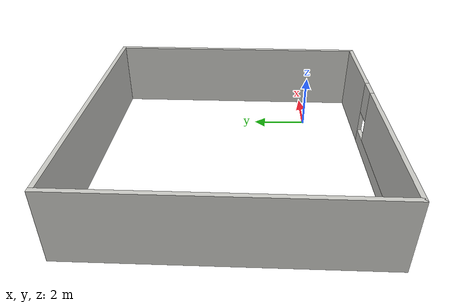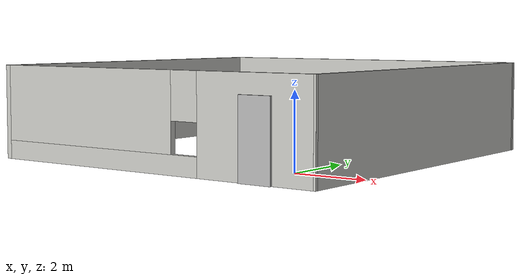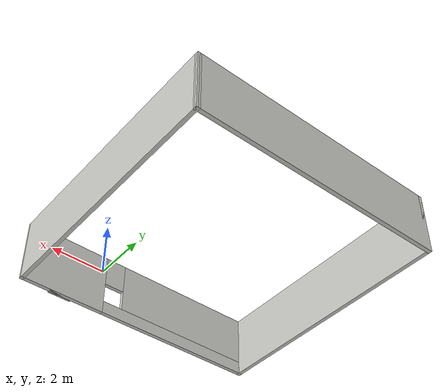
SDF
<?xml version='1.0'?>
<sdf version='1.7'>
  <model name='ground'>
    <pose>-2.92873 2.88 0 0 -0 0</pose>
    <link name='Door_0'>
      <collision name='Door_0_Collision'>
        <geometry>
          <box>
            <size>0.9 0.17 2</size>
          </box>
        </geometry>
        <pose>0 0 1 0 -0 0</pose>
      </collision>
      <visual name='Door_0_Visual'>
        <pose>0 0 1 0 -0 0</pose>
        <geometry>
          <box>
            <size>0.9 0.17 2</size>
          </box>
        </geometry>
      </visual>
      <pose>3.36872 -4.98 0 0 -0 0</pose>
    </link>
    <link name='Wall_3'>
      <pose>-5e-05 -4.925 0 0 -0 3.14159</pose>
      <visual name='Wall_3_Visual_0'>
        <pose>-3.32185 0 1.25 0 -0 0</pose>
        <geometry>
          <box>
            <size>3.32985 0.15 2.5</size>
          </box>
        </geometry>
        <material>
          <script>
            <uri>file://media/materials/scripts/gazebo.material</uri>
            <name>Gazebo/CeilingTiled</name>
          </script>
          <ambient>1 1 1 1</ambient>
        </material>
        <meta>
          <layer>0</layer>
        </meta>
      </visual>
      <collision name='Wall_3_Collision_0'>
        <geometry>
          <box>
            <size>3.32985 0.15 2.5</size>
          </box>
        </geometry>
        <pose>-3.32185 0 1.25 0 -0 0</pose>
      </collision>
      <visual name='Wall_3_Visual_1'>
        <pose>1.66492 0 0.25 0 -0 0</pose>
        <geometry>
          <box>
            <size>6.6437 0.15 0.5</size>
          </box>
        </geometry>
        <material>
          <script>
            <uri>file://media/materials/scripts/gazebo.material</uri>
            <name>Gazebo/CeilingTiled</name>
          </script>
          <ambient>1 1 1 1</ambient>
        </material>
        <meta>
          <layer>0</layer>
        </meta>
      </visual>
      <collision name='Wall_3_Collision_1'>
        <geometry>
          <box>
            <size>6.6437 0.15 0.5</size>
          </box>
        </geometry>
        <pose>1.66492 0 0.25 0 -0 0</pose>
      </collision>
      <visual name='Wall_3_Visual_2'>
        <pose>2.06492 0 1.5 0 -0 0</pose>
        <geometry>
          <box>
            <size>5.8437 0.15 2</size>
          </box>
        </geometry>
        <material>
          <script>
            <uri>file://media/materials/scripts/gazebo.material</uri>
            <name>Gazebo/CeilingTiled</name>
          </script>
          <ambient>1 1 1 1</ambient>
        </material>
        <meta>
          <layer>0</layer>
        </meta>
      </visual>
      <collision name='Wall_3_Collision_2'>
        <geometry>
          <box>
            <size>5.8437 0.15 2</size>
          </box>
        </geometry>
        <pose>2.06492 0 1.5 0 -0 0</pose>
      </collision>
      <visual name='Wall_3_Visual_3'>
        <pose>-1.25693 0 1.9 0 -0 0</pose>
        <geometry>
          <box>
            <size>0.8 0.15 1.2</size>
          </box>
        </geometry>
        <material>
          <script>
            <uri>file://media/materials/scripts/gazebo.material</uri>
            <name>Gazebo/CeilingTiled</name>
          </script>
          <ambient>1 1 1 1</ambient>
        </material>
        <meta>
          <layer>0</layer>
        </meta>
      </visual>
      <collision name='Wall_3_Collision_3'>
        <geometry>
          <box>
            <size>0.8 0.15 1.2</size>
          </box>
        </geometry>
        <pose>-1.25693 0 1.9 0 -0 0</pose>
      </collision>
    </link>
    <link name='Wall_5'>
      <collision name='Wall_5_Collision'>
        <geometry>
          <box>
            <size>10 0.15 2.5</size>
          </box>
        </geometry>
        <pose>0 0 1.25 0 -0 0</pose>
      </collision>
      <visual name='Wall_5_Visual'>
        <pose>0 0 1.25 0 -0 0</pose>
        <geometry>
          <box>
            <size>10 0.15 2.5</size>
          </box>
        </geometry>
        <material>
          <script>
            <uri>file://media/materials/scripts/gazebo.material</uri>
            <name>Gazebo/CeilingTiled</name>
          </script>
          <ambient>1 1 1 1</ambient>
        </material>
        <meta>
          <layer>0</layer>
        </meta>
      </visual>
      <pose>-4.92505 0 0 0 -0 1.5708</pose>
    </link>
    <link name='Wall_8'>
      <collision name='Wall_8_Collision'>
        <geometry>
          <box>
            <size>10 0.15 2.5</size>
          </box>
        </geometry>
        <pose>0 0 1.25 0 -0 0</pose>
      </collision>
      <visual name='Wall_8_Visual'>
        <pose>0 0 1.25 0 -0 0</pose>
        <geometry>
          <box>
            <size>10 0.15 2.5</size>
          </box>
        </geometry>
        <material>
          <script>
            <uri>file://media/materials/scripts/gazebo.material</uri>
            <name>Gazebo/CeilingTiled</name>
          </script>
          <ambient>1 1 1 1</ambient>
        </material>
        <meta>
          <layer>0</layer>
        </meta>
      </visual>
      <pose>-5e-05 4.925 0 0 -0 0</pose>
    </link>
    <link name='Wall_9'>
      <collision name='Wall_9_Collision'>
        <geometry>
          <box>
            <size>10 0.15 2.5</size>
          </box>
        </geometry>
        <pose>0 0 1.25 0 -0 0</pose>
      </collision>
      <visual name='Wall_9_Visual'>
        <pose>0 0 1.25 0 -0 0</pose>
        <geometry>
          <box>
            <size>10 0.15 2.5</size>
          </box>
        </geometry>
        <material>
          <script>
            <uri>file://media/materials/scripts/gazebo.material</uri>
            <name>Gazebo/CeilingTiled</name>
          </script>
          <ambient>1 1 1 1</ambient>
        </material>
        <meta>
          <layer>0</layer>
        </meta>
      </visual>
      <pose>4.91834 0 0 0 -0 -1.57214</pose>
    </link>
    <static>1</static>
  </model>
</sdf>
